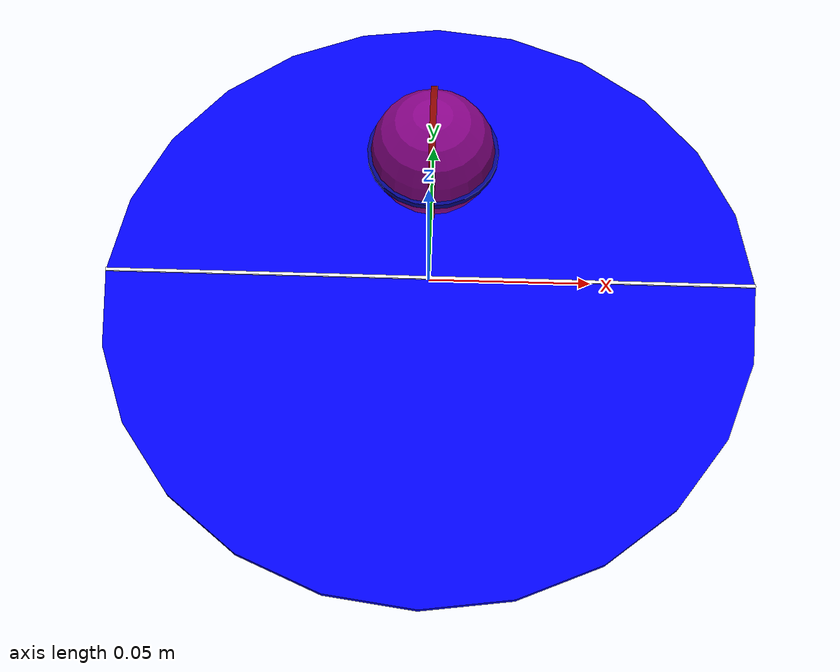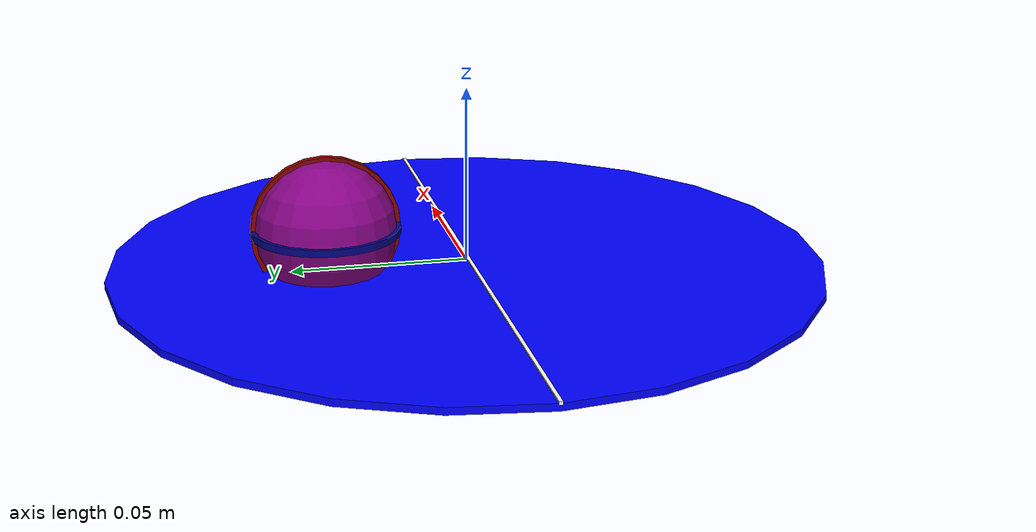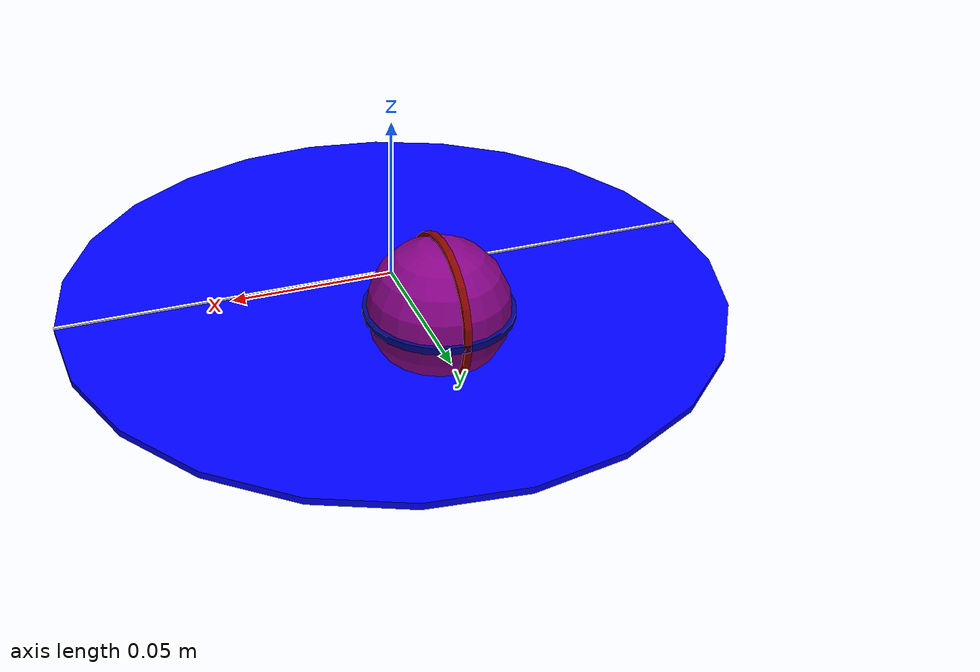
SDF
<?xml version="1.0"?>
<sdf version="1.7">
  <model name="turntable">
    <link name="table">
      <inertial>
        <pose>0 0 0.00915 0 0 0</pose>
        <mass>0.375</mass>
        <inertia>
          <ixx>0.000860</ixx>
          <ixy>0</ixy>
          <ixz>0</ixz>
          <iyy>0.000860</iyy>
          <iyz>0</iyz>
          <izz>0.00171</izz>
        </inertia>
      </inertial>
      <visual name="visual_cylinder">
        <pose>0 0 0 0 0 0</pose>
        <geometry>
          <cylinder>
            <radius>0.101</radius>
            <length>0.002</length>
          </cylinder>
        </geometry>
        <material>
          <diffuse>0.0 0 1.0 1.0</diffuse>
        </material>
      </visual>
      <visual name="visual_box">
        <pose>0 0 0.001 0 0 0</pose>
        <geometry>
          <box>
            <size>0.202 0.001 0.001</size>
          </box>
        </geometry>
        <material>
          <diffuse>1 1 1.0 1.0</diffuse>
        </material>
      </visual>
      <visual name="visual_cylinder_base">
        <pose>0 0 -0.001 0 0 0</pose>
        <geometry>
          <cylinder>
            <radius>0.080</radius>
            <length>0.002</length>
          </cylinder>
        </geometry>
        <material>
          <diffuse>0.0 0 1.0 1.0</diffuse>
        </material>
      </visual>
      <collision name="collision_cylinder">
        <pose>0 0 0 0 0 0</pose>
        <geometry>
          <cylinder>
            <radius>0.101</radius>
            <length>0.002</length>
          </cylinder>
        </geometry>
        <surface>
          <friction>
            <ode>
              <mu>0.9</mu>
              <mu2>0.9</mu2>
            </ode>
          </friction>
        </surface>
      </collision>
      <collision name="collision_cylinder_base">
        <pose>0 0 -0.001 0 0 0</pose>
        <geometry>
          <cylinder>
            <radius>0.080</radius>
            <length>0.002</length>
          </cylinder>
        </geometry>
      </collision>
    </link>
    <joint name="table_to_world" type="revolute">
      <parent>world</parent>
      <child>table</child>
      <axis>
        <xyz>0 0 1</xyz>
        <limit>
          <effort>100</effort>
        </limit>
        <dynamics>
          <damping>0.1</damping>
          <friction>0</friction>
          <spring_reference>0</spring_reference>
          <spring_stiffness>0</spring_stiffness>
        </dynamics>
      </axis>
    </joint>
    <link name="ball">
      <pose>0 0.04 0.002 0 0 0</pose>
      <inertial>
        <pose>0 0 0.01 0 0 0</pose>
        <mass>0.028</mass>
        <inertia>
          <ixx>1.17e-5</ixx>
          <ixy>0</ixy>
          <ixz>0</ixz>
          <iyy>1.9e-5</iyy>
          <iyz>0</iyz>
          <izz>1.9e-5</izz>
        </inertia>
      </inertial>
      <visual name="sphere_visual">
        <pose>0 0 0.01 0 0 0</pose>
        <geometry>
          <sphere>
            <radius>0.02</radius>
          </sphere>
        </geometry>
        <material>
          <diffuse>0.53 0.01 0.53 1.0</diffuse>
        </material>
      </visual>
      <visual name="cylinder_visual_1">
        <pose>0 0 0.01 0 0 0</pose>
        <geometry>
          <cylinder>
            <radius>0.021</radius>
            <length>0.002</length>
          </cylinder>
        </geometry>
        <material>
          <diffuse>0.0 0.01 0.53 1.0</diffuse>
        </material>
      </visual>
      <visual name="cylinder_visual_2">
        <pose>0 0 0.01 0 1.57 0</pose>
        <geometry>
          <cylinder>
            <radius>0.021</radius>
            <length>0.002</length>
          </cylinder>
        </geometry>
        <material>
          <diffuse>0.53 0.01 0 1.0</diffuse>
        </material>
      </visual>
      <collision name="sphere_collision">
        <pose>0 0 0.01 0 0 0</pose>
        <geometry>
          <sphere>
            <radius>0.02</radius>
          </sphere>
        </geometry>
        <surface>
          <friction>
            <ode>
              <mu>0.9</mu>
              <mu2>0.9</mu2>
            </ode>
          </friction>
        </surface>
      </collision>
    </link>
  </model>
</sdf>
